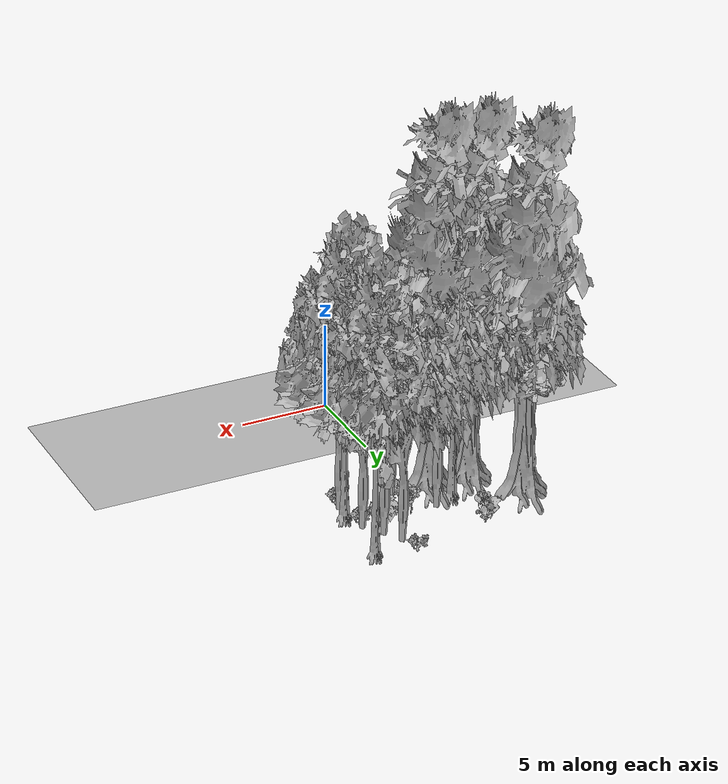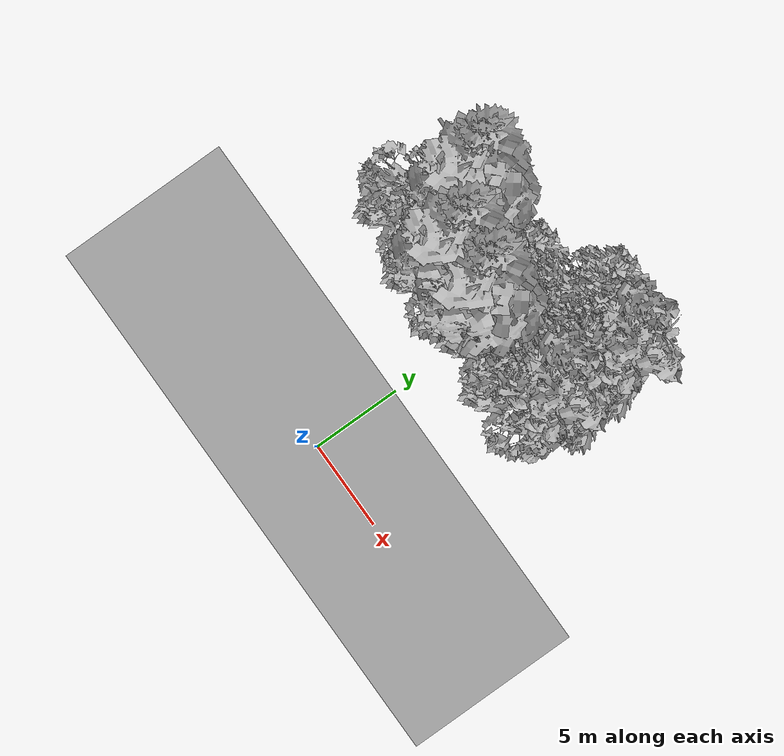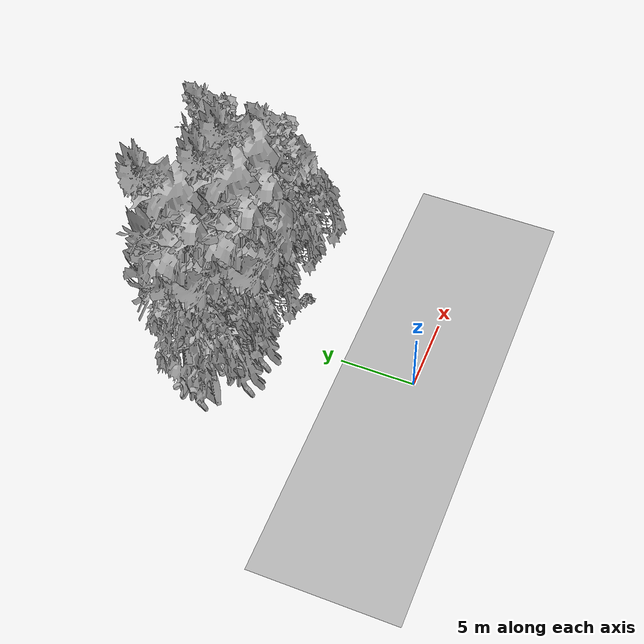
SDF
<sdf version="1.7">
 <world name="default">
  <model name="ground_plane">
   <static>1</static>
   <link name="link">
    <collision name="collision">
     <geometry><plane><normal>0 0 1</normal><size>100 100</size></plane></geometry>
     <surface><contact><ode><min_depth>0.01</min_depth><max_vel>0</max_vel></ode></contact></surface>
    </collision>
    <visual name="grass">
     <cast_shadows>0</cast_shadows>
     <geometry>
      <mesh>
       <scale>0.5814285714285714 0.18142857142857144 0.1</scale>
       <uri>file://grass_plane/meshes/grass_plane.dae</uri>
      </mesh>
     </geometry>
    </visual>
   </link>
  </model>
  <model name="Tree 1">
   <static>1</static>
   <pose>1.3071375135084722 10.766365979711825 0 1.57079 -0 0</pose>
   <link name="link">
    <collision name="collision">
     <geometry><mesh><scale>3.5 5 3.5</scale><uri>model://tree_2/meshes/tree_2.obj</uri></mesh></geometry>
    </collision>
    <visual name="visual">
     <geometry><mesh><scale>3.5 5 3.5</scale><uri>model://tree_2/meshes/tree_2.obj</uri></mesh></geometry>
    </visual>
   </link>
  </model>
  <model name="Tree 26">
   <static>1</static>
   <pose>-3.3455341259502163 10.574882866468975 0 1.57079 -0 0</pose>
   <link name="link">
    <collision name="collision">
     <geometry><mesh><scale>3.5 5 3.5</scale><uri>model://tree_4/meshes/tree_4.obj</uri></mesh></geometry>
    </collision>
    <visual name="visual">
     <geometry><mesh><scale>3.5 5 3.5</scale><uri>model://tree_4/meshes/tree_4.obj</uri></mesh></geometry>
    </visual>
   </link>
  </model>
  <model name="Tree 75">
   <static>1</static>
   <pose>3.0339323526101083 13.483908740960189 0 1.57079 -0 0</pose>
   <link name="link">
    <collision name="collision">
     <geometry><mesh><scale>3.5 5 3.5</scale><uri>model://tree_2/meshes/tree_2.obj</uri></mesh></geometry>
    </collision>
    <visual name="visual">
     <geometry><mesh><scale>3.5 5 3.5</scale><uri>model://tree_2/meshes/tree_2.obj</uri></mesh></geometry>
    </visual>
   </link>
  </model>
  <model name="Tree 94">
   <static>1</static>
   <pose>-1.9382628106190651 11.325146782138997 0 1.57079 -0 0</pose>
   <link name="link">
    <collision name="collision">
     <geometry><mesh><scale>3.5 5 3.5</scale><uri>model://tree_9/meshes/tree_9.obj</uri></mesh></geometry>
    </collision>
    <visual name="visual">
     <geometry><mesh><scale>3.5 5 3.5</scale><uri>model://tree_9/meshes/tree_9.obj</uri></mesh></geometry>
    </visual>
   </link>
  </model>
  <model name="Tree 219">
   <static>1</static>
   <pose>3.7491670440725784 12.436469599191394 0 1.57079 -0 0</pose>
   <link name="link">
    <collision name="collision">
     <geometry><mesh><scale>3.5 5 3.5</scale><uri>model://tree_2/meshes/tree_2.obj</uri></mesh></geometry>
    </collision>
    <visual name="visual">
     <geometry><mesh><scale>3.5 5 3.5</scale><uri>model://tree_2/meshes/tree_2.obj</uri></mesh></geometry>
    </visual>
   </link>
  </model>
  <model name="Tree 224">
   <static>1</static>
   <pose>4.1043272196713545 10.84346455415648 0 1.57079 -0 0</pose>
   <link name="link">
    <collision name="collision">
     <geometry><mesh><scale>3.5 5 3.5</scale><uri>model://tree_9/meshes/tree_9.obj</uri></mesh></geometry>
    </collision>
    <visual name="visual">
     <geometry><mesh><scale>3.5 5 3.5</scale><uri>model://tree_9/meshes/tree_9.obj</uri></mesh></geometry>
    </visual>
   </link>
  </model>
  <model name="Tree 226">
   <static>1</static>
   <pose>-0.6992484151865526 12.15712203898822 0 1.57079 -0 0</pose>
   <link name="link">
    <collision name="collision">
     <geometry><mesh><scale>3.5 5 3.5</scale><uri>model://tree_2/meshes/tree_2.obj</uri></mesh></geometry>
    </collision>
    <visual name="visual">
     <geometry><mesh><scale>3.5 5 3.5</scale><uri>model://tree_2/meshes/tree_2.obj</uri></mesh></geometry>
    </visual>
   </link>
  </model>
  <model name="Tree 311">
   <static>1</static>
   <pose>4.30059209401341 14.85428866648423 0 1.57079 -0 0</pose>
   <link name="link">
    <collision name="collision">
     <geometry><mesh><scale>3.5 5 3.5</scale><uri>model://tree_9/meshes/tree_9.obj</uri></mesh></geometry>
    </collision>
    <visual name="visual">
     <geometry><mesh><scale>3.5 5 3.5</scale><uri>model://tree_9/meshes/tree_9.obj</uri></mesh></geometry>
    </visual>
   </link>
  </model>
  <model name="Tree 348">
   <static>1</static>
   <pose>-5.396251168607471 12.943485456568293 0 1.57079 -0 0</pose>
   <link name="link">
    <collision name="collision">
     <geometry><mesh><scale>3.5 5 3.5</scale><uri>model://tree_4/meshes/tree_4.obj</uri></mesh></geometry>
    </collision>
    <visual name="visual">
     <geometry><mesh><scale>3.5 5 3.5</scale><uri>model://tree_4/meshes/tree_4.obj</uri></mesh></geometry>
    </visual>
   </link>
  </model>
  <model name="Tree 349">
   <static>1</static>
   <pose>-1.209065563084593 10.360165623287998 0 1.57079 -0 0</pose>
   <link name="link">
    <collision name="collision">
     <geometry><mesh><scale>3.5 5 3.5</scale><uri>model://tree_4/meshes/tree_4.obj</uri></mesh></geometry>
    </collision>
    <visual name="visual">
     <geometry><mesh><scale>3.5 5 3.5</scale><uri>model://tree_4/meshes/tree_4.obj</uri></mesh></geometry>
    </visual>
   </link>
  </model>
  <model name="Tree 357">
   <static>1</static>
   <pose>-2.6815201379648457 10.448863359176723 0 1.57079 -0 0</pose>
   <link name="link">
    <collision name="collision">
     <geometry><mesh><scale>3.5 5 3.5</scale><uri>model://tree_2/meshes/tree_2.obj</uri></mesh></geometry>
    </collision>
    <visual name="visual">
     <geometry><mesh><scale>3.5 5 3.5</scale><uri>model://tree_2/meshes/tree_2.obj</uri></mesh></geometry>
    </visual>
   </link>
  </model>
  <model name="Tree 362">
   <static>1</static>
   <pose>-5.993303104555466 11.154847291529187 0 1.57079 -0 0</pose>
   <link name="link">
    <collision name="collision">
     <geometry><mesh><scale>3.5 5 3.5</scale><uri>model://tree_2/meshes/tree_2.obj</uri></mesh></geometry>
    </collision>
    <visual name="visual">
     <geometry><mesh><scale>3.5 5 3.5</scale><uri>model://tree_2/meshes/tree_2.obj</uri></mesh></geometry>
    </visual>
   </link>
  </model>
  <model name="Tree 428">
   <static>1</static>
   <pose>2.4615374232073037 14.471916853501256 0 1.57079 -0 0</pose>
   <link name="link">
    <collision name="collision">
     <geometry><mesh><scale>3.5 5 3.5</scale><uri>model://tree_2/meshes/tree_2.obj</uri></mesh></geometry>
    </collision>
    <visual name="visual">
     <geometry><mesh><scale>3.5 5 3.5</scale><uri>model://tree_2/meshes/tree_2.obj</uri></mesh></geometry>
    </visual>
   </link>
  </model>
  <model name="Tree 429">
   <static>1</static>
   <pose>4.0020146799227945 10.188947161575822 0 1.57079 -0 0</pose>
   <link name="link">
    <collision name="collision">
     <geometry><mesh><scale>3.5 5 3.5</scale><uri>model://tree_2/meshes/tree_2.obj</uri></mesh></geometry>
    </collision>
    <visual name="visual">
     <geometry><mesh><scale>3.5 5 3.5</scale><uri>model://tree_2/meshes/tree_2.obj</uri></mesh></geometry>
    </visual>
   </link>
  </model>
  <model name="Bush 110">
   <static>1</static>
   <pose>-2.5206966740648156 14.039026255664904 0 1.57079 -0 0</pose>
   <link name="link">
    <collision name="collision">
     <geometry><mesh><scale>2 2 2</scale><uri>model://bush_4/meshes/bush_4.obj</uri></mesh></geometry>
     <surface><contact><collide_without_contact>false</collide_without_contact></contact></surface>
    </collision>
    <visual name="visual">
     <geometry><mesh><scale>2 2 2</scale><uri>model://bush_4/meshes/bush_4.obj</uri></mesh></geometry>
    </visual>
   </link>
  </model>
  <model name="Bush 129">
   <static>1</static>
   <pose>-2.1440936550685024 14.781499517879734 0 1.57079 -0 0</pose>
   <link name="link">
    <collision name="collision">
     <geometry><mesh><scale>2 2 2</scale><uri>model://bush_0/meshes/bush_0.obj</uri></mesh></geometry>
     <surface><contact><collide_without_contact>false</collide_without_contact></contact></surface>
    </collision>
    <visual name="visual">
     <geometry><mesh><scale>2 2 2</scale><uri>model://bush_0/meshes/bush_0.obj</uri></mesh></geometry>
    </visual>
   </link>
  </model>
  <model name="Bush 135">
   <static>1</static>
   <pose>1.896764070487734 14.998873946600462 0 1.57079 -0 0</pose>
   <link name="link">
    <collision name="collision">
     <geometry><mesh><scale>2 2 2</scale><uri>model://bush_2/meshes/bush_2.obj</uri></mesh></geometry>
     <surface><contact><collide_without_contact>false</collide_without_contact></contact></surface>
    </collision>
    <visual name="visual">
     <geometry><mesh><scale>2 2 2</scale><uri>model://bush_2/meshes/bush_2.obj</uri></mesh></geometry>
    </visual>
   </link>
  </model>
  <model name="Bush 172">
   <static>1</static>
   <pose>0.9876559505522096 12.346317479516589 0 1.57079 -0 0</pose>
   <link name="link">
    <collision name="collision">
     <geometry><mesh><scale>2 2 2</scale><uri>model://bush_5/meshes/bush_5.obj</uri></mesh></geometry>
     <surface><contact><collide_without_contact>false</collide_without_contact></contact></surface>
    </collision>
    <visual name="visual">
     <geometry><mesh><scale>2 2 2</scale><uri>model://bush_5/meshes/bush_5.obj</uri></mesh></geometry>
    </visual>
   </link>
  </model>
  <model name="Bush 178">
   <static>1</static>
   <pose>0.8979351104298772 10.246253747179015 0 1.57079 -0 0</pose>
   <link name="link">
    <collision name="collision">
     <geometry><mesh><scale>2 2 2</scale><uri>model://bush_3/meshes/bush_3.obj</uri></mesh></geometry>
     <surface><contact><collide_without_contact>false</collide_without_contact></contact></surface>
    </collision>
    <visual name="visual">
     <geometry><mesh><scale>2 2 2</scale><uri>model://bush_3/meshes/bush_3.obj</uri></mesh></geometry>
    </visual>
   </link>
  </model>
  <model name="Bush 226">
   <static>1</static>
   <pose>3.6614970974710914 8.9859965341046 0 1.57079 -0 0</pose>
   <link name="link">
    <collision name="collision">
     <geometry><mesh><scale>2 2 2</scale><uri>model://bush_2/meshes/bush_2.obj</uri></mesh></geometry>
     <surface><contact><collide_without_contact>false</collide_without_contact></contact></surface>
    </collision>
    <visual name="visual">
     <geometry><mesh><scale>2 2 2</scale><uri>model://bush_2/meshes/bush_2.obj</uri></mesh></geometry>
    </visual>
   </link>
  </model>
  <model name="Bush 229">
   <static>1</static>
   <pose>3.4204239052775236 11.367695262260881 0 1.57079 -0 0</pose>
   <link name="link">
    <collision name="collision">
     <geometry><mesh><scale>2 2 2</scale><uri>model://bush_2/meshes/bush_2.obj</uri></mesh></geometry>
     <surface><contact><collide_without_contact>false</collide_without_contact></contact></surface>
    </collision>
    <visual name="visual">
     <geometry><mesh><scale>2 2 2</scale><uri>model://bush_2/meshes/bush_2.obj</uri></mesh></geometry>
    </visual>
   </link>
  </model>
  <model name="Bush 322">
   <static>1</static>
   <pose>2.7439209336424497 12.535086979557697 0 1.57079 -0 0</pose>
   <link name="link">
    <collision name="collision">
     <geometry><mesh><scale>2 2 2</scale><uri>model://bush_1/meshes/bush_1.obj</uri></mesh></geometry>
     <surface><contact><collide_without_contact>false</collide_without_contact></contact></surface>
    </collision>
    <visual name="visual">
     <geometry><mesh><scale>2 2 2</scale><uri>model://bush_1/meshes/bush_1.obj</uri></mesh></geometry>
    </visual>
   </link>
  </model>
 </world>
</sdf>
